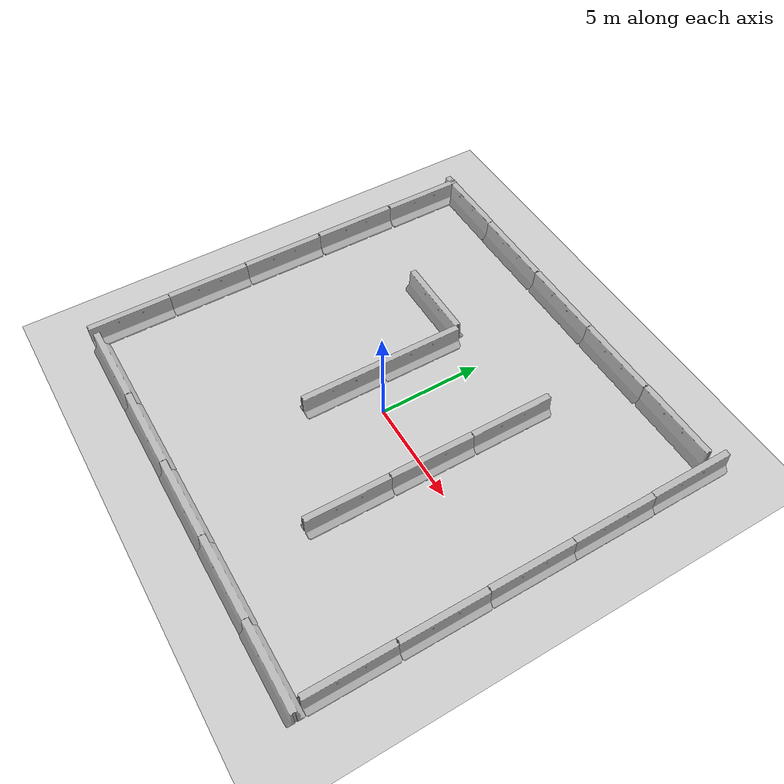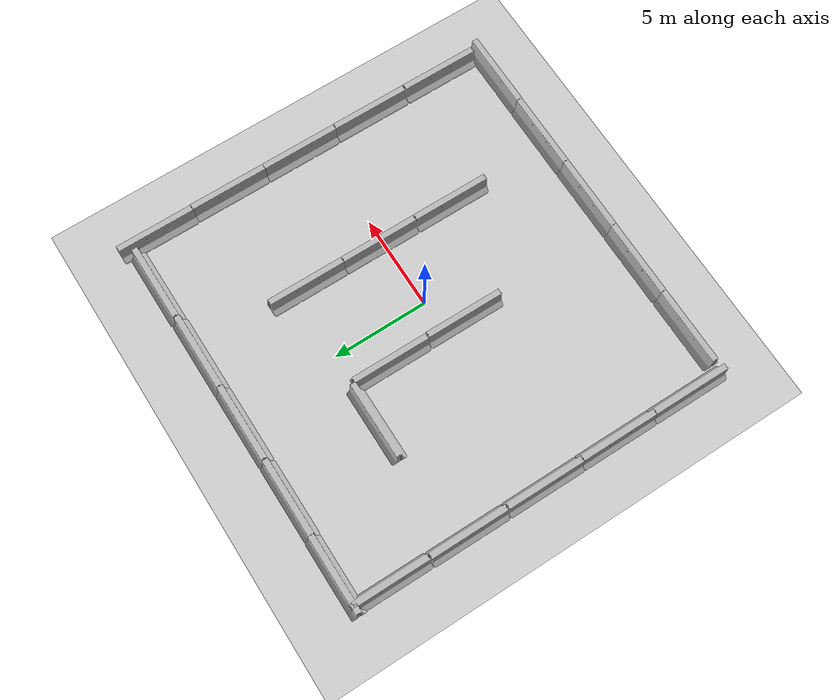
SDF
<sdf version="1.6">
 <world name="default">
  <light name="sun" type="directional">
   <pose>0 0 10 0 -0 0</pose>
   <diffuse>0.8 0.8 0.8 1</diffuse>
   <specular>0.2 0.2 0.2 1</specular>
   <attenuation>
    <range>1000</range>
    <constant>0.9</constant>
    <linear>0.01</linear>
    <quadratic>0.001</quadratic>
   </attenuation>
   <direction>-0.5 0.1 -0.9</direction>
  </light>
  <model name="ground_plane">
   <static>1</static>
   <link name="link">
    <collision name="collision">
     <geometry><plane><normal>0 0 1</normal><size>100 100</size></plane></geometry>
     <surface>
      <contact><collide_bitmask>65535</collide_bitmask></contact>
      <friction><ode><mu>100</mu><mu2>50</mu2></ode></friction>
     </surface>
    </collision>
    <visual name="visual">
     <cast_shadows>0</cast_shadows>
     <geometry><plane><normal>0 0 1</normal><size>100 100</size></plane></geometry>
     <material>
      <script><uri>file://media/materials/scripts/gazebo.material</uri><name>Gazebo/Grey</name></script>
     </material>
    </visual>
   </link>
  </model>
  <gravity>0 0 -9.8</gravity>
  <magnetic_field>6e-06 2.3e-05 -4.2e-05</magnetic_field>
  <atmosphere type="adiabatic"/>
  <physics name="default_physics" default="0" type="ode">
   <max_step_size>0.001</max_step_size>
   <real_time_factor>1</real_time_factor>
   <real_time_update_rate>1000</real_time_update_rate>
  </physics>
  <scene><ambient>0.4 0.4 0.4 1</ambient><background>0.7 0.7 0.7 1</background><shadows>1</shadows></scene>
  <audio><device>default</device></audio>
  <spherical_coordinates>
   <surface_model>EARTH_WGS84</surface_model>
   <latitude_deg>0</latitude_deg>
   <longitude_deg>0</longitude_deg>
   <elevation>0</elevation>
   <heading_deg>0</heading_deg>
  </spherical_coordinates>
  <model name="jersey_barrier">
   <static>1</static>
   <link name="link">
    <visual name="visual">
     <geometry><mesh><uri>model://jersey_barrier/meshes/jersey_barrier.dae</uri></mesh></geometry>
    </visual>
    <collision name="upright">
     <pose>0 0 0.5715 0 -0 0</pose>
     <geometry><box><size>4.06542 0.3063 1.143</size></box></geometry>
    </collision>
    <collision name="base">
     <pose>0 0 0.032258 0 -0 0</pose>
     <geometry><box><size>4.06542 0.8107 0.064516</size></box></geometry>
    </collision>
    <collision name="base2">
     <pose>0 0 0.1 0 -0 0</pose>
     <geometry><box><size>4.06542 0.65 0.1</size></box></geometry>
    </collision>
    <collision name="base3">
     <pose>0 0 0.2 0 -0 0</pose>
     <geometry><box><size>4.06542 0.5 0.1</size></box></geometry>
    </collision>
    <collision name="left-angle">
     <pose>0 -0.224 0.2401 0.9 -0 0</pose>
     <geometry><box><size>4.06542 0.5 0.064516</size></box></geometry>
    </collision>
    <collision name="right-angle">
     <pose>0 0.224 0.2401 -0.9 0 0</pose>
     <geometry><box><size>4.06542 0.5 0.064516</size></box></geometry>
    </collision>
   </link>
   <pose>-0.663362 10.3241 0 0 -0 0</pose>
  </model>
  <model name="jersey_barrier_0">
   <static>1</static>
   <link name="link">
    <visual name="visual">
     <geometry><mesh><uri>model://jersey_barrier/meshes/jersey_barrier.dae</uri></mesh></geometry>
    </visual>
    <collision name="upright">
     <pose>0 0 0.5715 0 -0 0</pose>
     <geometry><box><size>4.06542 0.3063 1.143</size></box></geometry>
    </collision>
    <collision name="base">
     <pose>0 0 0.032258 0 -0 0</pose>
     <geometry><box><size>4.06542 0.8107 0.064516</size></box></geometry>
    </collision>
    <collision name="base2">
     <pose>0 0 0.1 0 -0 0</pose>
     <geometry><box><size>4.06542 0.65 0.1</size></box></geometry>
    </collision>
    <collision name="base3">
     <pose>0 0 0.2 0 -0 0</pose>
     <geometry><box><size>4.06542 0.5 0.1</size></box></geometry>
    </collision>
    <collision name="left-angle">
     <pose>0 -0.224 0.2401 0.9 -0 0</pose>
     <geometry><box><size>4.06542 0.5 0.064516</size></box></geometry>
    </collision>
    <collision name="right-angle">
     <pose>0 0.224 0.2401 -0.9 0 0</pose>
     <geometry><box><size>4.06542 0.5 0.064516</size></box></geometry>
    </collision>
   </link>
   <pose>3.38724 10.3274 0 0 -0 0</pose>
  </model>
  <model name="jersey_barrier_1">
   <static>1</static>
   <link name="link">
    <visual name="visual">
     <geometry><mesh><uri>model://jersey_barrier/meshes/jersey_barrier.dae</uri></mesh></geometry>
    </visual>
    <collision name="upright">
     <pose>0 0 0.5715 0 -0 0</pose>
     <geometry><box><size>4.06542 0.3063 1.143</size></box></geometry>
    </collision>
    <collision name="base">
     <pose>0 0 0.032258 0 -0 0</pose>
     <geometry><box><size>4.06542 0.8107 0.064516</size></box></geometry>
    </collision>
    <collision name="base2">
     <pose>0 0 0.1 0 -0 0</pose>
     <geometry><box><size>4.06542 0.65 0.1</size></box></geometry>
    </collision>
    <collision name="base3">
     <pose>0 0 0.2 0 -0 0</pose>
     <geometry><box><size>4.06542 0.5 0.1</size></box></geometry>
    </collision>
    <collision name="left-angle">
     <pose>0 -0.224 0.2401 0.9 -0 0</pose>
     <geometry><box><size>4.06542 0.5 0.064516</size></box></geometry>
    </collision>
    <collision name="right-angle">
     <pose>0 0.224 0.2401 -0.9 0 0</pose>
     <geometry><box><size>4.06542 0.5 0.064516</size></box></geometry>
    </collision>
   </link>
   <pose>7.46255 10.3608 0 0 -0 0</pose>
  </model>
  <model name="jersey_barrier_2">
   <static>1</static>
   <link name="link">
    <visual name="visual">
     <geometry><mesh><uri>model://jersey_barrier/meshes/jersey_barrier.dae</uri></mesh></geometry>
    </visual>
    <collision name="upright">
     <pose>0 0 0.5715 0 -0 0</pose>
     <geometry><box><size>4.06542 0.3063 1.143</size></box></geometry>
    </collision>
    <collision name="base">
     <pose>0 0 0.032258 0 -0 0</pose>
     <geometry><box><size>4.06542 0.8107 0.064516</size></box></geometry>
    </collision>
    <collision name="base2">
     <pose>0 0 0.1 0 -0 0</pose>
     <geometry><box><size>4.06542 0.65 0.1</size></box></geometry>
    </collision>
    <collision name="base3">
     <pose>0 0 0.2 0 -0 0</pose>
     <geometry><box><size>4.06542 0.5 0.1</size></box></geometry>
    </collision>
    <collision name="left-angle">
     <pose>0 -0.224 0.2401 0.9 -0 0</pose>
     <geometry><box><size>4.06542 0.5 0.064516</size></box></geometry>
    </collision>
    <collision name="right-angle">
     <pose>0 0.224 0.2401 -0.9 0 0</pose>
     <geometry><box><size>4.06542 0.5 0.064516</size></box></geometry>
    </collision>
   </link>
   <pose>-4.74663 10.3195 0 0 -0 0</pose>
  </model>
  <model name="jersey_barrier_1_clone">
   <static>1</static>
   <link name="link">
    <visual name="visual">
     <geometry><mesh><uri>model://jersey_barrier/meshes/jersey_barrier.dae</uri></mesh></geometry>
    </visual>
    <collision name="upright">
     <pose>0 0 0.5715 0 -0 0</pose>
     <geometry><box><size>4.06542 0.3063 1.143</size></box></geometry>
    </collision>
    <collision name="base">
     <pose>0 0 0.032258 0 -0 0</pose>
     <geometry><box><size>4.06542 0.8107 0.064516</size></box></geometry>
    </collision>
    <collision name="base2">
     <pose>0 0 0.1 0 -0 0</pose>
     <geometry><box><size>4.06542 0.65 0.1</size></box></geometry>
    </collision>
    <collision name="base3">
     <pose>0 0 0.2 0 -0 0</pose>
     <geometry><box><size>4.06542 0.5 0.1</size></box></geometry>
    </collision>
    <collision name="left-angle">
     <pose>0 -0.224 0.2401 0.9 -0 0</pose>
     <geometry><box><size>4.06542 0.5 0.064516</size></box></geometry>
    </collision>
    <collision name="right-angle">
     <pose>0 0.224 0.2401 -0.9 0 0</pose>
     <geometry><box><size>4.06542 0.5 0.064516</size></box></geometry>
    </collision>
   </link>
   <pose>-7.92545 -9.57647 0 0 -0 0</pose>
  </model>
  <model name="jersey_barrier_1_clone_0">
   <static>1</static>
   <link name="link">
    <visual name="visual">
     <geometry><mesh><uri>model://jersey_barrier/meshes/jersey_barrier.dae</uri></mesh></geometry>
    </visual>
    <collision name="upright">
     <pose>0 0 0.5715 0 -0 0</pose>
     <geometry><box><size>4.06542 0.3063 1.143</size></box></geometry>
    </collision>
    <collision name="base">
     <pose>0 0 0.032258 0 -0 0</pose>
     <geometry><box><size>4.06542 0.8107 0.064516</size></box></geometry>
    </collision>
    <collision name="base2">
     <pose>0 0 0.1 0 -0 0</pose>
     <geometry><box><size>4.06542 0.65 0.1</size></box></geometry>
    </collision>
    <collision name="base3">
     <pose>0 0 0.2 0 -0 0</pose>
     <geometry><box><size>4.06542 0.5 0.1</size></box></geometry>
    </collision>
    <collision name="left-angle">
     <pose>0 -0.224 0.2401 0.9 -0 0</pose>
     <geometry><box><size>4.06542 0.5 0.064516</size></box></geometry>
    </collision>
    <collision name="right-angle">
     <pose>0 0.224 0.2401 -0.9 0 0</pose>
     <geometry><box><size>4.06542 0.5 0.064516</size></box></geometry>
    </collision>
   </link>
   <pose>-3.87308 -9.57715 0 0 -0 0</pose>
  </model>
  <model name="jersey_barrier_1_clone_1">
   <static>1</static>
   <link name="link">
    <visual name="visual">
     <geometry><mesh><uri>model://jersey_barrier/meshes/jersey_barrier.dae</uri></mesh></geometry>
    </visual>
    <collision name="upright">
     <pose>0 0 0.5715 0 -0 0</pose>
     <geometry><box><size>4.06542 0.3063 1.143</size></box></geometry>
    </collision>
    <collision name="base">
     <pose>0 0 0.032258 0 -0 0</pose>
     <geometry><box><size>4.06542 0.8107 0.064516</size></box></geometry>
    </collision>
    <collision name="base2">
     <pose>0 0 0.1 0 -0 0</pose>
     <geometry><box><size>4.06542 0.65 0.1</size></box></geometry>
    </collision>
    <collision name="base3">
     <pose>0 0 0.2 0 -0 0</pose>
     <geometry><box><size>4.06542 0.5 0.1</size></box></geometry>
    </collision>
    <collision name="left-angle">
     <pose>0 -0.224 0.2401 0.9 -0 0</pose>
     <geometry><box><size>4.06542 0.5 0.064516</size></box></geometry>
    </collision>
    <collision name="right-angle">
     <pose>0 0.224 0.2401 -0.9 0 0</pose>
     <geometry><box><size>4.06542 0.5 0.064516</size></box></geometry>
    </collision>
   </link>
   <pose>0.15175 -9.59201 0 0 -0 0</pose>
  </model>
  <model name="jersey_barrier_1_clone_2">
   <static>1</static>
   <link name="link">
    <visual name="visual">
     <geometry><mesh><uri>model://jersey_barrier/meshes/jersey_barrier.dae</uri></mesh></geometry>
    </visual>
    <collision name="upright">
     <pose>0 0 0.5715 0 -0 0</pose>
     <geometry><box><size>4.06542 0.3063 1.143</size></box></geometry>
    </collision>
    <collision name="base">
     <pose>0 0 0.032258 0 -0 0</pose>
     <geometry><box><size>4.06542 0.8107 0.064516</size></box></geometry>
    </collision>
    <collision name="base2">
     <pose>0 0 0.1 0 -0 0</pose>
     <geometry><box><size>4.06542 0.65 0.1</size></box></geometry>
    </collision>
    <collision name="base3">
     <pose>0 0 0.2 0 -0 0</pose>
     <geometry><box><size>4.06542 0.5 0.1</size></box></geometry>
    </collision>
    <collision name="left-angle">
     <pose>0 -0.224 0.2401 0.9 -0 0</pose>
     <geometry><box><size>4.06542 0.5 0.064516</size></box></geometry>
    </collision>
    <collision name="right-angle">
     <pose>0 0.224 0.2401 -0.9 0 0</pose>
     <geometry><box><size>4.06542 0.5 0.064516</size></box></geometry>
    </collision>
   </link>
   <pose>4.18505 -9.59411 0 0 -0 0</pose>
  </model>
  <model name="jersey_barrier_1_clone_7">
   <static>1</static>
   <link name="link">
    <visual name="visual">
     <geometry><mesh><uri>model://jersey_barrier/meshes/jersey_barrier.dae</uri></mesh></geometry>
    </visual>
    <collision name="upright">
     <pose>0 0 0.5715 0 -0 0</pose>
     <geometry><box><size>4.06542 0.3063 1.143</size></box></geometry>
    </collision>
    <collision name="base">
     <pose>0 0 0.032258 0 -0 0</pose>
     <geometry><box><size>4.06542 0.8107 0.064516</size></box></geometry>
    </collision>
    <collision name="base2">
     <pose>0 0 0.1 0 -0 0</pose>
     <geometry><box><size>4.06542 0.65 0.1</size></box></geometry>
    </collision>
    <collision name="base3">
     <pose>0 0 0.2 0 -0 0</pose>
     <geometry><box><size>4.06542 0.5 0.1</size></box></geometry>
    </collision>
    <collision name="left-angle">
     <pose>0 -0.224 0.2401 0.9 -0 0</pose>
     <geometry><box><size>4.06542 0.5 0.064516</size></box></geometry>
    </collision>
    <collision name="right-angle">
     <pose>0 0.224 0.2401 -0.9 0 0</pose>
     <geometry><box><size>4.06542 0.5 0.064516</size></box></geometry>
    </collision>
   </link>
   <pose>-10.3995 4.38859 0 0 0 -1.57458</pose>
  </model>
  <model name="jersey_barrier_1_clone_7_clone">
   <static>1</static>
   <link name="link">
    <visual name="visual">
     <geometry><mesh><uri>model://jersey_barrier/meshes/jersey_barrier.dae</uri></mesh></geometry>
    </visual>
    <collision name="upright">
     <pose>0 0 0.5715 0 -0 0</pose>
     <geometry><box><size>4.06542 0.3063 1.143</size></box></geometry>
    </collision>
    <collision name="base">
     <pose>0 0 0.032258 0 -0 0</pose>
     <geometry><box><size>4.06542 0.8107 0.064516</size></box></geometry>
    </collision>
    <collision name="base2">
     <pose>0 0 0.1 0 -0 0</pose>
     <geometry><box><size>4.06542 0.65 0.1</size></box></geometry>
    </collision>
    <collision name="base3">
     <pose>0 0 0.2 0 -0 0</pose>
     <geometry><box><size>4.06542 0.5 0.1</size></box></geometry>
    </collision>
    <collision name="left-angle">
     <pose>0 -0.224 0.2401 0.9 -0 0</pose>
     <geometry><box><size>4.06542 0.5 0.064516</size></box></geometry>
    </collision>
    <collision name="right-angle">
     <pose>0 0.224 0.2401 -0.9 0 0</pose>
     <geometry><box><size>4.06542 0.5 0.064516</size></box></geometry>
    </collision>
   </link>
   <pose>-10.4128 0.296365 0 0 0 -1.57458</pose>
  </model>
  <model name="jersey_barrier_1_clone_7_clone_0">
   <static>1</static>
   <link name="link">
    <visual name="visual">
     <geometry><mesh><uri>model://jersey_barrier/meshes/jersey_barrier.dae</uri></mesh></geometry>
    </visual>
    <collision name="upright">
     <pose>0 0 0.5715 0 -0 0</pose>
     <geometry><box><size>4.06542 0.3063 1.143</size></box></geometry>
    </collision>
    <collision name="base">
     <pose>0 0 0.032258 0 -0 0</pose>
     <geometry><box><size>4.06542 0.8107 0.064516</size></box></geometry>
    </collision>
    <collision name="base2">
     <pose>0 0 0.1 0 -0 0</pose>
     <geometry><box><size>4.06542 0.65 0.1</size></box></geometry>
    </collision>
    <collision name="base3">
     <pose>0 0 0.2 0 -0 0</pose>
     <geometry><box><size>4.06542 0.5 0.1</size></box></geometry>
    </collision>
    <collision name="left-angle">
     <pose>0 -0.224 0.2401 0.9 -0 0</pose>
     <geometry><box><size>4.06542 0.5 0.064516</size></box></geometry>
    </collision>
    <collision name="right-angle">
     <pose>0 0.224 0.2401 -0.9 0 0</pose>
     <geometry><box><size>4.06542 0.5 0.064516</size></box></geometry>
    </collision>
   </link>
   <pose>-10.4148 -3.75613 0 0 0 -1.57458</pose>
  </model>
  <model name="jersey_barrier_1_clone_7_clone_1">
   <static>1</static>
   <link name="link">
    <visual name="visual">
     <geometry><mesh><uri>model://jersey_barrier/meshes/jersey_barrier.dae</uri></mesh></geometry>
    </visual>
    <collision name="upright">
     <pose>0 0 0.5715 0 -0 0</pose>
     <geometry><box><size>4.06542 0.3063 1.143</size></box></geometry>
    </collision>
    <collision name="base">
     <pose>0 0 0.032258 0 -0 0</pose>
     <geometry><box><size>4.06542 0.8107 0.064516</size></box></geometry>
    </collision>
    <collision name="base2">
     <pose>0 0 0.1 0 -0 0</pose>
     <geometry><box><size>4.06542 0.65 0.1</size></box></geometry>
    </collision>
    <collision name="base3">
     <pose>0 0 0.2 0 -0 0</pose>
     <geometry><box><size>4.06542 0.5 0.1</size></box></geometry>
    </collision>
    <collision name="left-angle">
     <pose>0 -0.224 0.2401 0.9 -0 0</pose>
     <geometry><box><size>4.06542 0.5 0.064516</size></box></geometry>
    </collision>
    <collision name="right-angle">
     <pose>0 0.224 0.2401 -0.9 0 0</pose>
     <geometry><box><size>4.06542 0.5 0.064516</size></box></geometry>
    </collision>
   </link>
   <pose>9.88001 4.98702 -0 0 0 -1.57458</pose>
  </model>
  <model name="jersey_barrier_1_clone_7_clone_2">
   <static>1</static>
   <link name="link">
    <visual name="visual">
     <geometry><mesh><uri>model://jersey_barrier/meshes/jersey_barrier.dae</uri></mesh></geometry>
    </visual>
    <collision name="upright">
     <pose>0 0 0.5715 0 -0 0</pose>
     <geometry><box><size>4.06542 0.3063 1.143</size></box></geometry>
    </collision>
    <collision name="base">
     <pose>0 0 0.032258 0 -0 0</pose>
     <geometry><box><size>4.06542 0.8107 0.064516</size></box></geometry>
    </collision>
    <collision name="base2">
     <pose>0 0 0.1 0 -0 0</pose>
     <geometry><box><size>4.06542 0.65 0.1</size></box></geometry>
    </collision>
    <collision name="base3">
     <pose>0 0 0.2 0 -0 0</pose>
     <geometry><box><size>4.06542 0.5 0.1</size></box></geometry>
    </collision>
    <collision name="left-angle">
     <pose>0 -0.224 0.2401 0.9 -0 0</pose>
     <geometry><box><size>4.06542 0.5 0.064516</size></box></geometry>
    </collision>
    <collision name="right-angle">
     <pose>0 0.224 0.2401 -0.9 0 0</pose>
     <geometry><box><size>4.06542 0.5 0.064516</size></box></geometry>
    </collision>
   </link>
   <pose>9.87069 0.961387 0 0 0 -1.57458</pose>
  </model>
  <model name="jersey_barrier_1_clone_7_clone_3">
   <static>1</static>
   <link name="link">
    <visual name="visual">
     <geometry><mesh><uri>model://jersey_barrier/meshes/jersey_barrier.dae</uri></mesh></geometry>
    </visual>
    <collision name="upright">
     <pose>0 0 0.5715 0 -0 0</pose>
     <geometry><box><size>4.06542 0.3063 1.143</size></box></geometry>
    </collision>
    <collision name="base">
     <pose>0 0 0.032258 0 -0 0</pose>
     <geometry><box><size>4.06542 0.8107 0.064516</size></box></geometry>
    </collision>
    <collision name="base2">
     <pose>0 0 0.1 0 -0 0</pose>
     <geometry><box><size>4.06542 0.65 0.1</size></box></geometry>
    </collision>
    <collision name="base3">
     <pose>0 0 0.2 0 -0 0</pose>
     <geometry><box><size>4.06542 0.5 0.1</size></box></geometry>
    </collision>
    <collision name="left-angle">
     <pose>0 -0.224 0.2401 0.9 -0 0</pose>
     <geometry><box><size>4.06542 0.5 0.064516</size></box></geometry>
    </collision>
    <collision name="right-angle">
     <pose>0 0.224 0.2401 -0.9 0 0</pose>
     <geometry><box><size>4.06542 0.5 0.064516</size></box></geometry>
    </collision>
   </link>
   <pose>9.87089 -3.10144 -0.004287 0 0 -1.57458</pose>
  </model>
  <model name="jersey_barrier_1_clone_7_clone_0_clone">
   <static>1</static>
   <link name="link">
    <visual name="visual">
     <geometry><mesh><uri>model://jersey_barrier/meshes/jersey_barrier.dae</uri></mesh></geometry>
    </visual>
    <collision name="upright">
     <pose>0 0 0.5715 0 -0 0</pose>
     <geometry><box><size>4.06542 0.3063 1.143</size></box></geometry>
    </collision>
    <collision name="base">
     <pose>0 0 0.032258 0 -0 0</pose>
     <geometry><box><size>4.06542 0.8107 0.064516</size></box></geometry>
    </collision>
    <collision name="base2">
     <pose>0 0 0.1 0 -0 0</pose>
     <geometry><box><size>4.06542 0.65 0.1</size></box></geometry>
    </collision>
    <collision name="base3">
     <pose>0 0 0.2 0 -0 0</pose>
     <geometry><box><size>4.06542 0.5 0.1</size></box></geometry>
    </collision>
    <collision name="left-angle">
     <pose>0 -0.224 0.2401 0.9 -0 0</pose>
     <geometry><box><size>4.06542 0.5 0.064516</size></box></geometry>
    </collision>
    <collision name="right-angle">
     <pose>0 0.224 0.2401 -0.9 0 0</pose>
     <geometry><box><size>4.06542 0.5 0.064516</size></box></geometry>
    </collision>
   </link>
   <pose>-10.4267 -7.79533 0 0 0 -1.57458</pose>
  </model>
  <model name="jersey_barrier_1_clone_7_clone_0_clone_0">
   <static>1</static>
   <link name="link">
    <visual name="visual">
     <geometry><mesh><uri>model://jersey_barrier/meshes/jersey_barrier.dae</uri></mesh></geometry>
    </visual>
    <collision name="upright">
     <pose>0 0 0.5715 0 -0 0</pose>
     <geometry><box><size>4.06542 0.3063 1.143</size></box></geometry>
    </collision>
    <collision name="base">
     <pose>0 0 0.032258 0 -0 0</pose>
     <geometry><box><size>4.06542 0.8107 0.064516</size></box></geometry>
    </collision>
    <collision name="base2">
     <pose>0 0 0.1 0 -0 0</pose>
     <geometry><box><size>4.06542 0.65 0.1</size></box></geometry>
    </collision>
    <collision name="base3">
     <pose>0 0 0.2 0 -0 0</pose>
     <geometry><box><size>4.06542 0.5 0.1</size></box></geometry>
    </collision>
    <collision name="left-angle">
     <pose>0 -0.224 0.2401 0.9 -0 0</pose>
     <geometry><box><size>4.06542 0.5 0.064516</size></box></geometry>
    </collision>
    <collision name="right-angle">
     <pose>0 0.224 0.2401 -0.9 0 0</pose>
     <geometry><box><size>4.06542 0.5 0.064516</size></box></geometry>
    </collision>
   </link>
   <pose>9.85693 -7.18324 0 0 0 -1.57458</pose>
  </model>
  <model name="jersey_barrier_1_clone_7_clone_3_clone">
   <static>1</static>
   <link name="link">
    <visual name="visual">
     <geometry><mesh><uri>model://jersey_barrier/meshes/jersey_barrier.dae</uri></mesh></geometry>
    </visual>
    <collision name="upright">
     <pose>0 0 0.5715 0 -0 0</pose>
     <geometry><box><size>4.06542 0.3063 1.143</size></box></geometry>
    </collision>
    <collision name="base">
     <pose>0 0 0.032258 0 -0 0</pose>
     <geometry><box><size>4.06542 0.8107 0.064516</size></box></geometry>
    </collision>
    <collision name="base2">
     <pose>0 0 0.1 0 -0 0</pose>
     <geometry><box><size>4.06542 0.65 0.1</size></box></geometry>
    </collision>
    <collision name="base3">
     <pose>0 0 0.2 0 -0 0</pose>
     <geometry><box><size>4.06542 0.5 0.1</size></box></geometry>
    </collision>
    <collision name="left-angle">
     <pose>0 -0.224 0.2401 0.9 -0 0</pose>
     <geometry><box><size>4.06542 0.5 0.064516</size></box></geometry>
    </collision>
    <collision name="right-angle">
     <pose>0 0.224 0.2401 -0.9 0 0</pose>
     <geometry><box><size>4.06542 0.5 0.064516</size></box></geometry>
    </collision>
   </link>
   <pose>3.60873 -3.8022 -0.004287 0 0 -1.57458</pose>
  </model>
  <model name="jersey_barrier_1_clone_7_clone_3_clone_0">
   <static>1</static>
   <link name="link">
    <visual name="visual">
     <geometry><mesh><uri>model://jersey_barrier/meshes/jersey_barrier.dae</uri></mesh></geometry>
    </visual>
    <collision name="upright">
     <pose>0 0 0.5715 0 -0 0</pose>
     <geometry><box><size>4.06542 0.3063 1.143</size></box></geometry>
    </collision>
    <collision name="base">
     <pose>0 0 0.032258 0 -0 0</pose>
     <geometry><box><size>4.06542 0.8107 0.064516</size></box></geometry>
    </collision>
    <collision name="base2">
     <pose>0 0 0.1 0 -0 0</pose>
     <geometry><box><size>4.06542 0.65 0.1</size></box></geometry>
    </collision>
    <collision name="base3">
     <pose>0 0 0.2 0 -0 0</pose>
     <geometry><box><size>4.06542 0.5 0.1</size></box></geometry>
    </collision>
    <collision name="left-angle">
     <pose>0 -0.224 0.2401 0.9 -0 0</pose>
     <geometry><box><size>4.06542 0.5 0.064516</size></box></geometry>
    </collision>
    <collision name="right-angle">
     <pose>0 0.224 0.2401 -0.9 0 0</pose>
     <geometry><box><size>4.06542 0.5 0.064516</size></box></geometry>
    </collision>
   </link>
   <pose>3.62463 0.271732 -0.004287 0 0 -1.57458</pose>
  </model>
  <model name="jersey_barrier_1_clone_7_clone_3_clone_1">
   <static>1</static>
   <link name="link">
    <visual name="visual">
     <geometry><mesh><uri>model://jersey_barrier/meshes/jersey_barrier.dae</uri></mesh></geometry>
    </visual>
    <collision name="upright">
     <pose>0 0 0.5715 0 -0 0</pose>
     <geometry><box><size>4.06542 0.3063 1.143</size></box></geometry>
    </collision>
    <collision name="base">
     <pose>0 0 0.032258 0 -0 0</pose>
     <geometry><box><size>4.06542 0.8107 0.064516</size></box></geometry>
    </collision>
    <collision name="base2">
     <pose>0 0 0.1 0 -0 0</pose>
     <geometry><box><size>4.06542 0.65 0.1</size></box></geometry>
    </collision>
    <collision name="base3">
     <pose>0 0 0.2 0 -0 0</pose>
     <geometry><box><size>4.06542 0.5 0.1</size></box></geometry>
    </collision>
    <collision name="left-angle">
     <pose>0 -0.224 0.2401 0.9 -0 0</pose>
     <geometry><box><size>4.06542 0.5 0.064516</size></box></geometry>
    </collision>
    <collision name="right-angle">
     <pose>0 0.224 0.2401 -0.9 0 0</pose>
     <geometry><box><size>4.06542 0.5 0.064516</size></box></geometry>
    </collision>
   </link>
   <pose>3.64054 4.32432 -0.004287 0 0 -1.57458</pose>
  </model>
  <model name="jersey_barrier_1_clone_7_clone_3_clone_2">
   <static>1</static>
   <link name="link">
    <visual name="visual">
     <geometry><mesh><uri>model://jersey_barrier/meshes/jersey_barrier.dae</uri></mesh></geometry>
    </visual>
    <collision name="upright">
     <pose>0 0 0.5715 0 -0 0</pose>
     <geometry><box><size>4.06542 0.3063 1.143</size></box></geometry>
    </collision>
    <collision name="base">
     <pose>0 0 0.032258 0 -0 0</pose>
     <geometry><box><size>4.06542 0.8107 0.064516</size></box></geometry>
    </collision>
    <collision name="base2">
     <pose>0 0 0.1 0 -0 0</pose>
     <geometry><box><size>4.06542 0.65 0.1</size></box></geometry>
    </collision>
    <collision name="base3">
     <pose>0 0 0.2 0 -0 0</pose>
     <geometry><box><size>4.06542 0.5 0.1</size></box></geometry>
    </collision>
    <collision name="left-angle">
     <pose>0 -0.224 0.2401 0.9 -0 0</pose>
     <geometry><box><size>4.06542 0.5 0.064516</size></box></geometry>
    </collision>
    <collision name="right-angle">
     <pose>0 0.224 0.2401 -0.9 0 0</pose>
     <geometry><box><size>4.06542 0.5 0.064516</size></box></geometry>
    </collision>
   </link>
   <pose>-1.73258 -1.07421 -0.004287 0 0 -1.57458</pose>
  </model>
  <model name="jersey_barrier_1_clone_7_clone_3_clone_3">
   <static>1</static>
   <link name="link">
    <visual name="visual">
     <geometry><mesh><uri>model://jersey_barrier/meshes/jersey_barrier.dae</uri></mesh></geometry>
    </visual>
    <collision name="upright">
     <pose>0 0 0.5715 0 -0 0</pose>
     <geometry><box><size>4.06542 0.3063 1.143</size></box></geometry>
    </collision>
    <collision name="base">
     <pose>0 0 0.032258 0 -0 0</pose>
     <geometry><box><size>4.06542 0.8107 0.064516</size></box></geometry>
    </collision>
    <collision name="base2">
     <pose>0 0 0.1 0 -0 0</pose>
     <geometry><box><size>4.06542 0.65 0.1</size></box></geometry>
    </collision>
    <collision name="base3">
     <pose>0 0 0.2 0 -0 0</pose>
     <geometry><box><size>4.06542 0.5 0.1</size></box></geometry>
    </collision>
    <collision name="left-angle">
     <pose>0 -0.224 0.2401 0.9 -0 0</pose>
     <geometry><box><size>4.06542 0.5 0.064516</size></box></geometry>
    </collision>
    <collision name="right-angle">
     <pose>0 0.224 0.2401 -0.9 0 0</pose>
     <geometry><box><size>4.06542 0.5 0.064516</size></box></geometry>
    </collision>
   </link>
   <pose>-1.73892 3.00545 -0.004287 0 0 -1.57458</pose>
  </model>
  <model name="jersey_barrier_1_clone_7_clone_3_clone_4">
   <static>1</static>
   <link name="link">
    <visual name="visual">
     <geometry><mesh><uri>model://jersey_barrier/meshes/jersey_barrier.dae</uri></mesh></geometry>
    </visual>
    <collision name="upright">
     <pose>0 0 0.5715 0 -0 0</pose>
     <geometry><box><size>4.06542 0.3063 1.143</size></box></geometry>
    </collision>
    <collision name="base">
     <pose>0 0 0.032258 0 -0 0</pose>
     <geometry><box><size>4.06542 0.8107 0.064516</size></box></geometry>
    </collision>
    <collision name="base2">
     <pose>0 0 0.1 0 -0 0</pose>
     <geometry><box><size>4.06542 0.65 0.1</size></box></geometry>
    </collision>
    <collision name="base3">
     <pose>0 0 0.2 0 -0 0</pose>
     <geometry><box><size>4.06542 0.5 0.1</size></box></geometry>
    </collision>
    <collision name="left-angle">
     <pose>0 -0.224 0.2401 0.9 -0 0</pose>
     <geometry><box><size>4.06542 0.5 0.064516</size></box></geometry>
    </collision>
    <collision name="right-angle">
     <pose>0 0.224 0.2401 -0.9 0 0</pose>
     <geometry><box><size>4.06542 0.5 0.064516</size></box></geometry>
    </collision>
   </link>
   <pose>-3.84537 5.11455 -0.004287 0 -0 3.13722</pose>
  </model>
  <model name="jersey_barrier_1_clone_7_clone_4">
   <static>1</static>
   <link name="link">
    <visual name="visual">
     <geometry><mesh><uri>model://jersey_barrier/meshes/jersey_barrier.dae</uri></mesh></geometry>
    </visual>
    <collision name="upright">
     <pose>0 0 0.5715 0 -0 0</pose>
     <geometry><box><size>4.06542 0.3063 1.143</size></box></geometry>
    </collision>
    <collision name="base">
     <pose>0 0 0.032258 0 -0 0</pose>
     <geometry><box><size>4.06542 0.8107 0.064516</size></box></geometry>
    </collision>
    <collision name="base2">
     <pose>0 0 0.1 0 -0 0</pose>
     <geometry><box><size>4.06542 0.65 0.1</size></box></geometry>
    </collision>
    <collision name="base3">
     <pose>0 0 0.2 0 -0 0</pose>
     <geometry><box><size>4.06542 0.5 0.1</size></box></geometry>
    </collision>
    <collision name="left-angle">
     <pose>0 -0.224 0.2401 0.9 -0 0</pose>
     <geometry><box><size>4.06542 0.5 0.064516</size></box></geometry>
    </collision>
    <collision name="right-angle">
     <pose>0 0.224 0.2401 -0.9 0 0</pose>
     <geometry><box><size>4.06542 0.5 0.064516</size></box></geometry>
    </collision>
   </link>
   <pose>-10.3559 8.49072 0 0 0 -1.57458</pose>
  </model>
  <model name="jersey_barrier_1_clone_2_clone">
   <static>1</static>
   <link name="link">
    <visual name="visual">
     <geometry><mesh><uri>model://jersey_barrier/meshes/jersey_barrier.dae</uri></mesh></geometry>
    </visual>
    <collision name="upright">
     <pose>0 0 0.5715 0 -0 0</pose>
     <geometry><box><size>4.06542 0.3063 1.143</size></box></geometry>
    </collision>
    <collision name="base">
     <pose>0 0 0.032258 0 -0 0</pose>
     <geometry><box><size>4.06542 0.8107 0.064516</size></box></geometry>
    </collision>
    <collision name="base2">
     <pose>0 0 0.1 0 -0 0</pose>
     <geometry><box><size>4.06542 0.65 0.1</size></box></geometry>
    </collision>
    <collision name="base3">
     <pose>0 0 0.2 0 -0 0</pose>
     <geometry><box><size>4.06542 0.5 0.1</size></box></geometry>
    </collision>
    <collision name="left-angle">
     <pose>0 -0.224 0.2401 0.9 -0 0</pose>
     <geometry><box><size>4.06542 0.5 0.064516</size></box></geometry>
    </collision>
    <collision name="right-angle">
     <pose>0 0.224 0.2401 -0.9 0 0</pose>
     <geometry><box><size>4.06542 0.5 0.064516</size></box></geometry>
    </collision>
   </link>
   <pose>8.22102 -9.61339 0 0 -0 0</pose>
  </model>
  <model name="jersey_barrier_1_clone_7_clone_1_clone">
   <static>1</static>
   <link name="link">
    <visual name="visual">
     <geometry><mesh><uri>model://jersey_barrier/meshes/jersey_barrier.dae</uri></mesh></geometry>
    </visual>
    <collision name="upright">
     <pose>0 0 0.5715 0 -0 0</pose>
     <geometry><box><size>4.06542 0.3063 1.143</size></box></geometry>
    </collision>
    <collision name="base">
     <pose>0 0 0.032258 0 -0 0</pose>
     <geometry><box><size>4.06542 0.8107 0.064516</size></box></geometry>
    </collision>
    <collision name="base2">
     <pose>0 0 0.1 0 -0 0</pose>
     <geometry><box><size>4.06542 0.65 0.1</size></box></geometry>
    </collision>
    <collision name="base3">
     <pose>0 0 0.2 0 -0 0</pose>
     <geometry><box><size>4.06542 0.5 0.1</size></box></geometry>
    </collision>
    <collision name="left-angle">
     <pose>0 -0.224 0.2401 0.9 -0 0</pose>
     <geometry><box><size>4.06542 0.5 0.064516</size></box></geometry>
    </collision>
    <collision name="right-angle">
     <pose>0 0.224 0.2401 -0.9 0 0</pose>
     <geometry><box><size>4.06542 0.5 0.064516</size></box></geometry>
    </collision>
   </link>
   <pose>9.8701 9.02558 0 0 0 -1.57458</pose>
  </model>
  <model name="jersey_barrier_2_clone">
   <static>1</static>
   <link name="link">
    <visual name="visual">
     <geometry><mesh><uri>model://jersey_barrier/meshes/jersey_barrier.dae</uri></mesh></geometry>
    </visual>
    <collision name="upright">
     <pose>0 0 0.5715 0 -0 0</pose>
     <geometry><box><size>4.06542 0.3063 1.143</size></box></geometry>
    </collision>
    <collision name="base">
     <pose>0 0 0.032258 0 -0 0</pose>
     <geometry><box><size>4.06542 0.8107 0.064516</size></box></geometry>
    </collision>
    <collision name="base2">
     <pose>0 0 0.1 0 -0 0</pose>
     <geometry><box><size>4.06542 0.65 0.1</size></box></geometry>
    </collision>
    <collision name="base3">
     <pose>0 0 0.2 0 -0 0</pose>
     <geometry><box><size>4.06542 0.5 0.1</size></box></geometry>
    </collision>
    <collision name="left-angle">
     <pose>0 -0.224 0.2401 0.9 -0 0</pose>
     <geometry><box><size>4.06542 0.5 0.064516</size></box></geometry>
    </collision>
    <collision name="right-angle">
     <pose>0 0.224 0.2401 -0.9 0 0</pose>
     <geometry><box><size>4.06542 0.5 0.064516</size></box></geometry>
    </collision>
   </link>
   <pose>-8.77755 10.3427 0 0 -0 0</pose>
  </model>
 </world>
</sdf>
